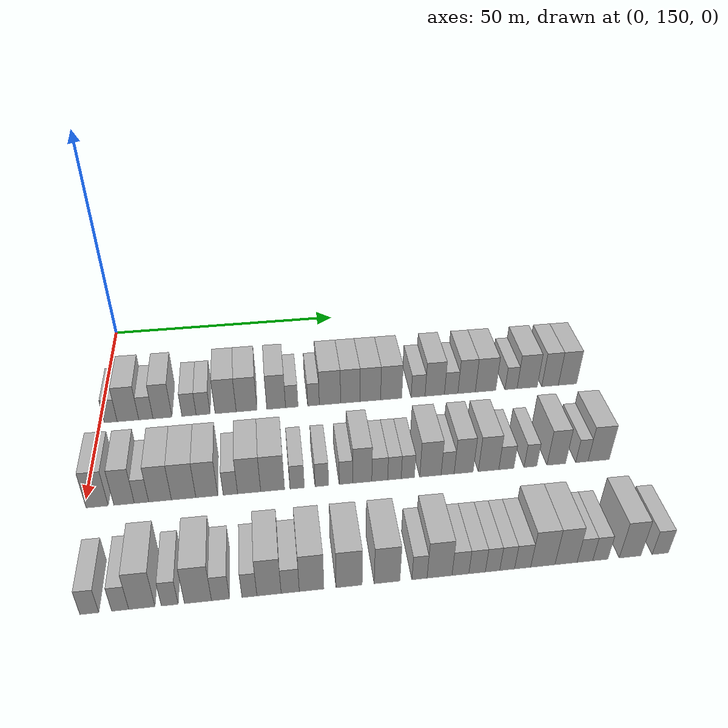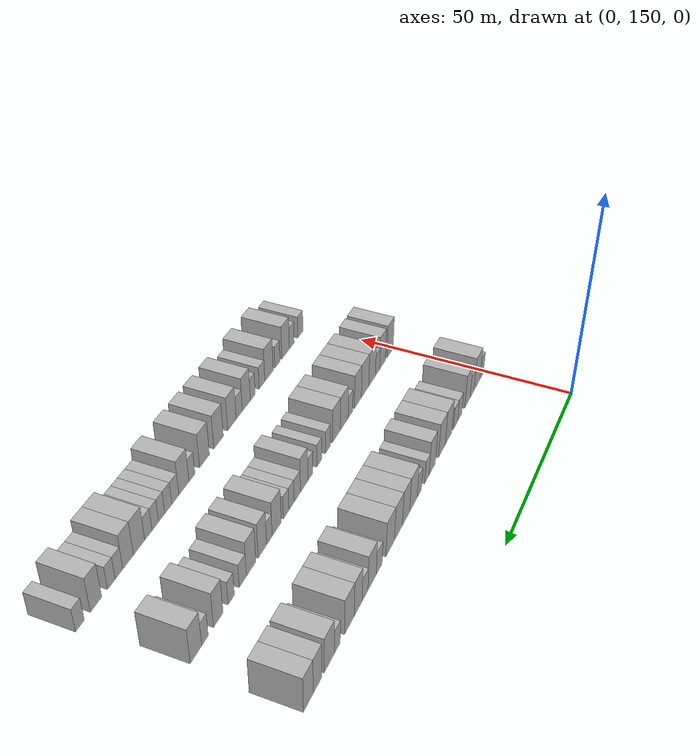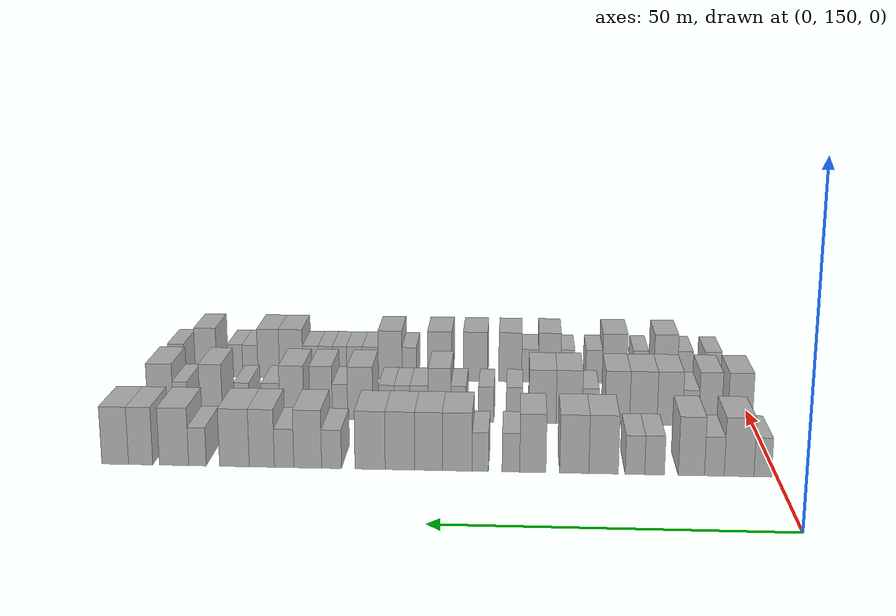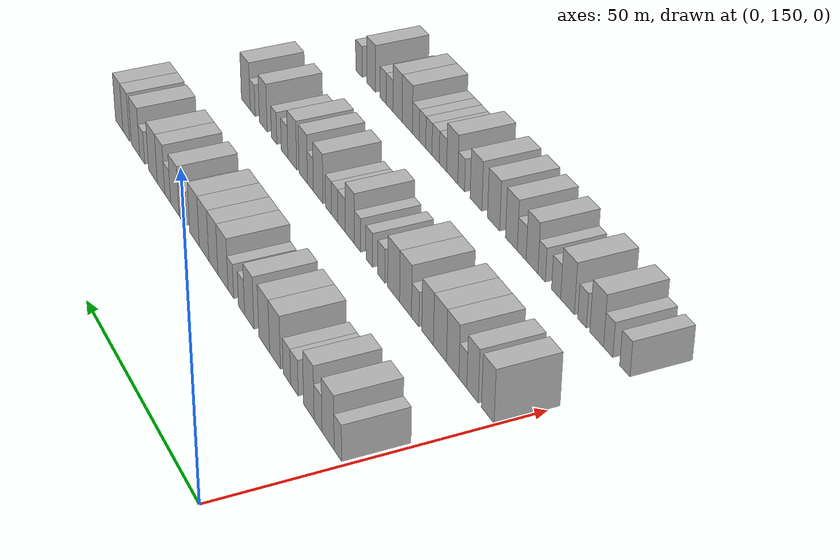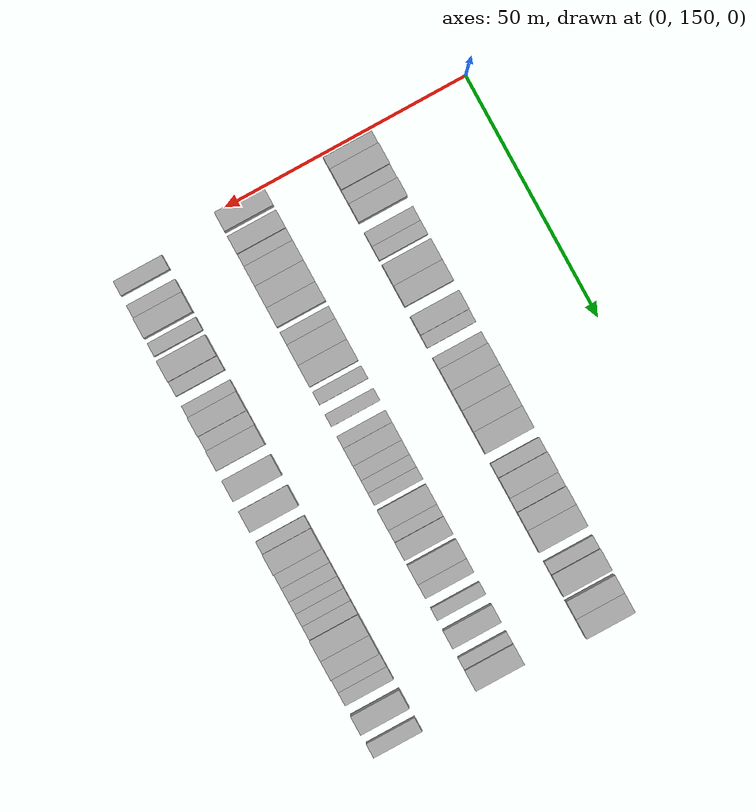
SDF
<sdf version="1.6">
 <world name="default">
  <model name="building_100">
   <static>1</static>
   <pose>25.0000 152.1278 0 0.000000 0.000000 0.000000</pose>
   <link name="link">
    <pose>0 0 3.00 0 0 0</pose>
    <collision name="collision"><geometry><box><size>10.0000 2.5672 6.0000</size></box></geometry></collision>
    <visual name="visual">
     <cast_shadows>0</cast_shadows>
     <geometry><box><size>10.0000 2.5672 6.0000</size></box></geometry>
     <material>
      <script>
       <uri>model://HANNAS_wall/materials/scripts</uri>
       <uri>model://HANNAS_wall/materials/textures</uri>
       <name>vrc/HANNAS_wall</name>
      </script>
     </material>
    </visual>
   </link>
  </model>
  <model name="building_101">
   <static>1</static>
   <pose>25.0000 155.5567 0 0.000000 0.000000 0.000000</pose>
   <link name="link">
    <pose>0 0 4.50 0 0 0</pose>
    <collision name="collision"><geometry><box><size>10.0000 4.2906 9.0000</size></box></geometry></collision>
    <visual name="visual">
     <cast_shadows>0</cast_shadows>
     <geometry><box><size>10.0000 4.2906 9.0000</size></box></geometry>
     <material>
      <script>
       <uri>model://HANNAS_wall/materials/scripts</uri>
       <uri>model://HANNAS_wall/materials/textures</uri>
       <name>vrc/HANNAS_wall</name>
      </script>
     </material>
    </visual>
   </link>
  </model>
  <model name="building_102">
   <static>1</static>
   <pose>25.0000 159.1269 0 0.000000 0.000000 0.000000</pose>
   <link name="link">
    <pose>0 0 3.00 0 0 0</pose>
    <collision name="collision"><geometry><box><size>10.0000 2.8499 6.0000</size></box></geometry></collision>
    <visual name="visual">
     <cast_shadows>0</cast_shadows>
     <geometry><box><size>10.0000 2.8499 6.0000</size></box></geometry>
     <material>
      <script>
       <uri>model://HANNAS_wall/materials/scripts</uri>
       <uri>model://HANNAS_wall/materials/textures</uri>
       <name>vrc/HANNAS_wall</name>
      </script>
     </material>
    </visual>
   </link>
  </model>
  <model name="building_103">
   <static>1</static>
   <pose>25.0000 162.4542 0 0.000000 0.000000 0.000000</pose>
   <link name="link">
    <pose>0 0 4.50 0 0 0</pose>
    <collision name="collision"><geometry><box><size>10.0000 3.8047 9.0000</size></box></geometry></collision>
    <visual name="visual">
     <cast_shadows>0</cast_shadows>
     <geometry><box><size>10.0000 3.8047 9.0000</size></box></geometry>
     <material>
      <script>
       <uri>model://HANNAS_wall/materials/scripts</uri>
       <uri>model://HANNAS_wall/materials/textures</uri>
       <name>vrc/HANNAS_wall</name>
      </script>
     </material>
    </visual>
   </link>
  </model>
  <model name="building_104">
   <static>1</static>
   <pose>25.0000 167.7966 0 0.000000 0.000000 0.000000</pose>
   <link name="link">
    <pose>0 0 3.00 0 0 0</pose>
    <collision name="collision"><geometry><box><size>10.0000 2.8801 6.0000</size></box></geometry></collision>
    <visual name="visual">
     <cast_shadows>0</cast_shadows>
     <geometry><box><size>10.0000 2.8801 6.0000</size></box></geometry>
     <material>
      <script>
       <uri>model://HANNAS_wall/materials/scripts</uri>
       <uri>model://HANNAS_wall/materials/textures</uri>
       <name>vrc/HANNAS_wall</name>
      </script>
     </material>
    </visual>
   </link>
  </model>
  <model name="building_105">
   <static>1</static>
   <pose>25.0000 170.6567 0 0.000000 0.000000 0.000000</pose>
   <link name="link">
    <pose>0 0 3.00 0 0 0</pose>
    <collision name="collision"><geometry><box><size>10.0000 2.8402 6.0000</size></box></geometry></collision>
    <visual name="visual">
     <cast_shadows>0</cast_shadows>
     <geometry><box><size>10.0000 2.8402 6.0000</size></box></geometry>
     <material>
      <script>
       <uri>model://HANNAS_wall/materials/scripts</uri>
       <uri>model://HANNAS_wall/materials/textures</uri>
       <name>vrc/HANNAS_wall</name>
      </script>
     </material>
    </visual>
   </link>
  </model>
  <model name="building_106">
   <static>1</static>
   <pose>25.0000 175.2298 0 0.000000 0.000000 0.000000</pose>
   <link name="link">
    <pose>0 0 4.50 0 0 0</pose>
    <collision name="collision"><geometry><box><size>10.0000 4.3061 9.0000</size></box></geometry></collision>
    <visual name="visual">
     <cast_shadows>0</cast_shadows>
     <geometry><box><size>10.0000 4.3061 9.0000</size></box></geometry>
     <material>
      <script>
       <uri>model://HANNAS_wall/materials/scripts</uri>
       <uri>model://HANNAS_wall/materials/textures</uri>
       <name>vrc/HANNAS_wall</name>
      </script>
     </material>
    </visual>
   </link>
  </model>
  <model name="building_107">
   <static>1</static>
   <pose>25.0000 179.5219 0 0.000000 0.000000 0.000000</pose>
   <link name="link">
    <pose>0 0 4.50 0 0 0</pose>
    <collision name="collision"><geometry><box><size>10.0000 4.2780 9.0000</size></box></geometry></collision>
    <visual name="visual">
     <cast_shadows>0</cast_shadows>
     <geometry><box><size>10.0000 4.2780 9.0000</size></box></geometry>
     <material>
      <script>
       <uri>model://HANNAS_wall/materials/scripts</uri>
       <uri>model://HANNAS_wall/materials/textures</uri>
       <name>vrc/HANNAS_wall</name>
      </script>
     </material>
    </visual>
   </link>
  </model>
  <model name="building_108">
   <static>1</static>
   <pose>25.0000 185.5893 0 0.000000 0.000000 0.000000</pose>
   <link name="link">
    <pose>0 0 4.50 0 0 0</pose>
    <collision name="collision"><geometry><box><size>10.0000 3.8569 9.0000</size></box></geometry></collision>
    <visual name="visual">
     <cast_shadows>0</cast_shadows>
     <geometry><box><size>10.0000 3.8569 9.0000</size></box></geometry>
     <material>
      <script>
       <uri>model://HANNAS_wall/materials/scripts</uri>
       <uri>model://HANNAS_wall/materials/textures</uri>
       <name>vrc/HANNAS_wall</name>
      </script>
     </material>
    </visual>
   </link>
  </model>
  <model name="building_109">
   <static>1</static>
   <pose>25.0000 188.8140 0 0.000000 0.000000 0.000000</pose>
   <link name="link">
    <pose>0 0 3.00 0 0 0</pose>
    <collision name="collision"><geometry><box><size>10.0000 2.5924 6.0000</size></box></geometry></collision>
    <visual name="visual">
     <cast_shadows>0</cast_shadows>
     <geometry><box><size>10.0000 2.5924 6.0000</size></box></geometry>
     <material>
      <script>
       <uri>model://HANNAS_wall/materials/scripts</uri>
       <uri>model://HANNAS_wall/materials/textures</uri>
       <name>vrc/HANNAS_wall</name>
      </script>
     </material>
    </visual>
   </link>
  </model>
  <model name="building_110">
   <static>1</static>
   <pose>25.0000 193.3159 0 0.000000 0.000000 0.000000</pose>
   <link name="link">
    <pose>0 0 3.00 0 0 0</pose>
    <collision name="collision"><geometry><box><size>10.0000 2.4115 6.0000</size></box></geometry></collision>
    <visual name="visual">
     <cast_shadows>0</cast_shadows>
     <geometry><box><size>10.0000 2.4115 6.0000</size></box></geometry>
     <material>
      <script>
       <uri>model://HANNAS_wall/materials/scripts</uri>
       <uri>model://HANNAS_wall/materials/textures</uri>
       <name>vrc/HANNAS_wall</name>
      </script>
     </material>
    </visual>
   </link>
  </model>
  <model name="building_111">
   <static>1</static>
   <pose>25.0000 196.7356 0 0.000000 0.000000 0.000000</pose>
   <link name="link">
    <pose>0 0 4.50 0 0 0</pose>
    <collision name="collision"><geometry><box><size>10.0000 4.4280 9.0000</size></box></geometry></collision>
    <visual name="visual">
     <cast_shadows>0</cast_shadows>
     <geometry><box><size>10.0000 4.4280 9.0000</size></box></geometry>
     <material>
      <script>
       <uri>model://HANNAS_wall/materials/scripts</uri>
       <uri>model://HANNAS_wall/materials/textures</uri>
       <name>vrc/HANNAS_wall</name>
      </script>
     </material>
    </visual>
   </link>
  </model>
  <model name="building_112">
   <static>1</static>
   <pose>25.0000 200.9779 0 0.000000 0.000000 0.000000</pose>
   <link name="link">
    <pose>0 0 4.50 0 0 0</pose>
    <collision name="collision"><geometry><box><size>10.0000 4.0565 9.0000</size></box></geometry></collision>
    <visual name="visual">
     <cast_shadows>0</cast_shadows>
     <geometry><box><size>10.0000 4.0565 9.0000</size></box></geometry>
     <material>
      <script>
       <uri>model://HANNAS_wall/materials/scripts</uri>
       <uri>model://HANNAS_wall/materials/textures</uri>
       <name>vrc/HANNAS_wall</name>
      </script>
     </material>
    </visual>
   </link>
  </model>
  <model name="building_113">
   <static>1</static>
   <pose>25.0000 205.1909 0 0.000000 0.000000 0.000000</pose>
   <link name="link">
    <pose>0 0 4.50 0 0 0</pose>
    <collision name="collision"><geometry><box><size>10.0000 4.3696 9.0000</size></box></geometry></collision>
    <visual name="visual">
     <cast_shadows>0</cast_shadows>
     <geometry><box><size>10.0000 4.3696 9.0000</size></box></geometry>
     <material>
      <script>
       <uri>model://HANNAS_wall/materials/scripts</uri>
       <uri>model://HANNAS_wall/materials/textures</uri>
       <name>vrc/HANNAS_wall</name>
      </script>
     </material>
    </visual>
   </link>
  </model>
  <model name="building_114">
   <static>1</static>
   <pose>25.0000 209.6207 0 0.000000 0.000000 0.000000</pose>
   <link name="link">
    <pose>0 0 4.50 0 0 0</pose>
    <collision name="collision"><geometry><box><size>10.0000 4.4899 9.0000</size></box></geometry></collision>
    <visual name="visual">
     <cast_shadows>0</cast_shadows>
     <geometry><box><size>10.0000 4.4899 9.0000</size></box></geometry>
     <material>
      <script>
       <uri>model://HANNAS_wall/materials/scripts</uri>
       <uri>model://HANNAS_wall/materials/textures</uri>
       <name>vrc/HANNAS_wall</name>
      </script>
     </material>
    </visual>
   </link>
  </model>
  <model name="building_115">
   <static>1</static>
   <pose>25.0000 215.3492 0 0.000000 0.000000 0.000000</pose>
   <link name="link">
    <pose>0 0 3.00 0 0 0</pose>
    <collision name="collision"><geometry><box><size>10.0000 2.9672 6.0000</size></box></geometry></collision>
    <visual name="visual">
     <cast_shadows>0</cast_shadows>
     <geometry><box><size>10.0000 2.9672 6.0000</size></box></geometry>
     <material>
      <script>
       <uri>model://HANNAS_wall/materials/scripts</uri>
       <uri>model://HANNAS_wall/materials/textures</uri>
       <name>vrc/HANNAS_wall</name>
      </script>
     </material>
    </visual>
   </link>
  </model>
  <model name="building_116">
   <static>1</static>
   <pose>25.0000 218.9071 0 0.000000 0.000000 0.000000</pose>
   <link name="link">
    <pose>0 0 4.50 0 0 0</pose>
    <collision name="collision"><geometry><box><size>10.0000 4.1486 9.0000</size></box></geometry></collision>
    <visual name="visual">
     <cast_shadows>0</cast_shadows>
     <geometry><box><size>10.0000 4.1486 9.0000</size></box></geometry>
     <material>
      <script>
       <uri>model://HANNAS_wall/materials/scripts</uri>
       <uri>model://HANNAS_wall/materials/textures</uri>
       <name>vrc/HANNAS_wall</name>
      </script>
     </material>
    </visual>
   </link>
  </model>
  <model name="building_117">
   <static>1</static>
   <pose>25.0000 222.4342 0 0.000000 0.000000 0.000000</pose>
   <link name="link">
    <pose>0 0 3.00 0 0 0</pose>
    <collision name="collision"><geometry><box><size>10.0000 2.9057 6.0000</size></box></geometry></collision>
    <visual name="visual">
     <cast_shadows>0</cast_shadows>
     <geometry><box><size>10.0000 2.9057 6.0000</size></box></geometry>
     <material>
      <script>
       <uri>model://HANNAS_wall/materials/scripts</uri>
       <uri>model://HANNAS_wall/materials/textures</uri>
       <name>vrc/HANNAS_wall</name>
      </script>
     </material>
    </visual>
   </link>
  </model>
  <model name="building_118">
   <static>1</static>
   <pose>25.0000 225.7679 0 0.000000 0.000000 0.000000</pose>
   <link name="link">
    <pose>0 0 4.50 0 0 0</pose>
    <collision name="collision"><geometry><box><size>10.0000 3.7616 9.0000</size></box></geometry></collision>
    <visual name="visual">
     <cast_shadows>0</cast_shadows>
     <geometry><box><size>10.0000 3.7616 9.0000</size></box></geometry>
     <material>
      <script>
       <uri>model://HANNAS_wall/materials/scripts</uri>
       <uri>model://HANNAS_wall/materials/textures</uri>
       <name>vrc/HANNAS_wall</name>
      </script>
     </material>
    </visual>
   </link>
  </model>
  <model name="building_119">
   <static>1</static>
   <pose>25.0000 229.8743 0 0.000000 0.000000 0.000000</pose>
   <link name="link">
    <pose>0 0 4.50 0 0 0</pose>
    <collision name="collision"><geometry><box><size>10.0000 4.4512 9.0000</size></box></geometry></collision>
    <visual name="visual">
     <cast_shadows>0</cast_shadows>
     <geometry><box><size>10.0000 4.4512 9.0000</size></box></geometry>
     <material>
      <script>
       <uri>model://HANNAS_wall/materials/scripts</uri>
       <uri>model://HANNAS_wall/materials/textures</uri>
       <name>vrc/HANNAS_wall</name>
      </script>
     </material>
    </visual>
   </link>
  </model>
  <model name="building_120">
   <static>1</static>
   <pose>25.0000 235.4243 0 0.000000 0.000000 0.000000</pose>
   <link name="link">
    <pose>0 0 3.00 0 0 0</pose>
    <collision name="collision"><geometry><box><size>10.0000 2.6488 6.0000</size></box></geometry></collision>
    <visual name="visual">
     <cast_shadows>0</cast_shadows>
     <geometry><box><size>10.0000 2.6488 6.0000</size></box></geometry>
     <material>
      <script>
       <uri>model://HANNAS_wall/materials/scripts</uri>
       <uri>model://HANNAS_wall/materials/textures</uri>
       <name>vrc/HANNAS_wall</name>
      </script>
     </material>
    </visual>
   </link>
  </model>
  <model name="building_121">
   <static>1</static>
   <pose>25.0000 238.9556 0 0.000000 0.000000 0.000000</pose>
   <link name="link">
    <pose>0 0 4.50 0 0 0</pose>
    <collision name="collision"><geometry><box><size>10.0000 4.4138 9.0000</size></box></geometry></collision>
    <visual name="visual">
     <cast_shadows>0</cast_shadows>
     <geometry><box><size>10.0000 4.4138 9.0000</size></box></geometry>
     <material>
      <script>
       <uri>model://HANNAS_wall/materials/scripts</uri>
       <uri>model://HANNAS_wall/materials/textures</uri>
       <name>vrc/HANNAS_wall</name>
      </script>
     </material>
    </visual>
   </link>
  </model>
  <model name="building_122">
   <static>1</static>
   <pose>25.0000 243.9910 0 0.000000 0.000000 0.000000</pose>
   <link name="link">
    <pose>0 0 4.50 0 0 0</pose>
    <collision name="collision"><geometry><box><size>10.0000 3.6571 9.0000</size></box></geometry></collision>
    <visual name="visual">
     <cast_shadows>0</cast_shadows>
     <geometry><box><size>10.0000 3.6571 9.0000</size></box></geometry>
     <material>
      <script>
       <uri>model://HANNAS_wall/materials/scripts</uri>
       <uri>model://HANNAS_wall/materials/textures</uri>
       <name>vrc/HANNAS_wall</name>
      </script>
     </material>
    </visual>
   </link>
  </model>
  <model name="building_123">
   <static>1</static>
   <pose>25.0000 247.8403 0 0.000000 0.000000 0.000000</pose>
   <link name="link">
    <pose>0 0 4.50 0 0 0</pose>
    <collision name="collision"><geometry><box><size>10.0000 4.0415 9.0000</size></box></geometry></collision>
    <visual name="visual">
     <cast_shadows>0</cast_shadows>
     <geometry><box><size>10.0000 4.0415 9.0000</size></box></geometry>
     <material>
      <script>
       <uri>model://HANNAS_wall/materials/scripts</uri>
       <uri>model://HANNAS_wall/materials/textures</uri>
       <name>vrc/HANNAS_wall</name>
      </script>
     </material>
    </visual>
   </link>
  </model>
  <model name="building_221">
   <static>1</static>
   <pose>47.0000 152.2348 0 0.000000 0.000000 0.000000</pose>
   <link name="link">
    <pose>0 0 4.50 0 0 0</pose>
    <collision name="collision"><geometry><box><size>10.0000 3.9241 9.0000</size></box></geometry></collision>
    <visual name="visual">
     <cast_shadows>0</cast_shadows>
     <geometry><box><size>10.0000 3.9241 9.0000</size></box></geometry>
     <material>
      <script>
       <uri>model://HANNAS_wall/materials/scripts</uri>
       <uri>model://HANNAS_wall/materials/textures</uri>
       <name>vrc/HANNAS_wall</name>
      </script>
     </material>
    </visual>
   </link>
  </model>
  <model name="building_222">
   <static>1</static>
   <pose>47.0000 157.0173 0 0.000000 0.000000 0.000000</pose>
   <link name="link">
    <pose>0 0 4.50 0 0 0</pose>
    <collision name="collision"><geometry><box><size>10.0000 3.6408 9.0000</size></box></geometry></collision>
    <visual name="visual">
     <cast_shadows>0</cast_shadows>
     <geometry><box><size>10.0000 3.6408 9.0000</size></box></geometry>
     <material>
      <script>
       <uri>model://HANNAS_wall/materials/scripts</uri>
       <uri>model://HANNAS_wall/materials/textures</uri>
       <name>vrc/HANNAS_wall</name>
      </script>
     </material>
    </visual>
   </link>
  </model>
  <model name="building_223">
   <static>1</static>
   <pose>47.0000 160.1199 0 0.000000 0.000000 0.000000</pose>
   <link name="link">
    <pose>0 0 3.00 0 0 0</pose>
    <collision name="collision"><geometry><box><size>10.0000 2.5644 6.0000</size></box></geometry></collision>
    <visual name="visual">
     <cast_shadows>0</cast_shadows>
     <geometry><box><size>10.0000 2.5644 6.0000</size></box></geometry>
     <material>
      <script>
       <uri>model://HANNAS_wall/materials/scripts</uri>
       <uri>model://HANNAS_wall/materials/textures</uri>
       <name>vrc/HANNAS_wall</name>
      </script>
     </material>
    </visual>
   </link>
  </model>
  <model name="building_224">
   <static>1</static>
   <pose>47.0000 163.4397 0 0.000000 0.000000 0.000000</pose>
   <link name="link">
    <pose>0 0 4.50 0 0 0</pose>
    <collision name="collision"><geometry><box><size>10.0000 4.0753 9.0000</size></box></geometry></collision>
    <visual name="visual">
     <cast_shadows>0</cast_shadows>
     <geometry><box><size>10.0000 4.0753 9.0000</size></box></geometry>
     <material>
      <script>
       <uri>model://HANNAS_wall/materials/scripts</uri>
       <uri>model://HANNAS_wall/materials/textures</uri>
       <name>vrc/HANNAS_wall</name>
      </script>
     </material>
    </visual>
   </link>
  </model>
  <model name="building_225">
   <static>1</static>
   <pose>47.0000 167.6775 0 0.000000 0.000000 0.000000</pose>
   <link name="link">
    <pose>0 0 4.50 0 0 0</pose>
    <collision name="collision"><geometry><box><size>10.0000 4.4003 9.0000</size></box></geometry></collision>
    <visual name="visual">
     <cast_shadows>0</cast_shadows>
     <geometry><box><size>10.0000 4.4003 9.0000</size></box></geometry>
     <material>
      <script>
       <uri>model://HANNAS_wall/materials/scripts</uri>
       <uri>model://HANNAS_wall/materials/textures</uri>
       <name>vrc/HANNAS_wall</name>
      </script>
     </material>
    </visual>
   </link>
  </model>
  <model name="building_226">
   <static>1</static>
   <pose>47.0000 171.8676 0 0.000000 0.000000 0.000000</pose>
   <link name="link">
    <pose>0 0 4.50 0 0 0</pose>
    <collision name="collision"><geometry><box><size>10.0000 3.9800 9.0000</size></box></geometry></collision>
    <visual name="visual">
     <cast_shadows>0</cast_shadows>
     <geometry><box><size>10.0000 3.9800 9.0000</size></box></geometry>
     <material>
      <script>
       <uri>model://HANNAS_wall/materials/scripts</uri>
       <uri>model://HANNAS_wall/materials/textures</uri>
       <name>vrc/HANNAS_wall</name>
      </script>
     </material>
    </visual>
   </link>
  </model>
  <model name="building_227">
   <static>1</static>
   <pose>47.0000 176.1687 0 0.000000 0.000000 0.000000</pose>
   <link name="link">
    <pose>0 0 3.00 0 0 0</pose>
    <collision name="collision"><geometry><box><size>10.0000 2.6221 6.0000</size></box></geometry></collision>
    <visual name="visual">
     <cast_shadows>0</cast_shadows>
     <geometry><box><size>10.0000 2.6221 6.0000</size></box></geometry>
     <material>
      <script>
       <uri>model://HANNAS_wall/materials/scripts</uri>
       <uri>model://HANNAS_wall/materials/textures</uri>
       <name>vrc/HANNAS_wall</name>
      </script>
     </material>
    </visual>
   </link>
  </model>
  <model name="building_228">
   <static>1</static>
   <pose>47.0000 179.5935 0 0.000000 0.000000 0.000000</pose>
   <link name="link">
    <pose>0 0 4.50 0 0 0</pose>
    <collision name="collision"><geometry><box><size>10.0000 4.2276 9.0000</size></box></geometry></collision>
    <visual name="visual">
     <cast_shadows>0</cast_shadows>
     <geometry><box><size>10.0000 4.2276 9.0000</size></box></geometry>
     <material>
      <script>
       <uri>model://HANNAS_wall/materials/scripts</uri>
       <uri>model://HANNAS_wall/materials/textures</uri>
       <name>vrc/HANNAS_wall</name>
      </script>
     </material>
    </visual>
   </link>
  </model>
  <model name="building_229">
   <static>1</static>
   <pose>47.0000 183.9075 0 0.000000 0.000000 0.000000</pose>
   <link name="link">
    <pose>0 0 4.50 0 0 0</pose>
    <collision name="collision"><geometry><box><size>10.0000 4.4002 9.0000</size></box></geometry></collision>
    <visual name="visual">
     <cast_shadows>0</cast_shadows>
     <geometry><box><size>10.0000 4.4002 9.0000</size></box></geometry>
     <material>
      <script>
       <uri>model://HANNAS_wall/materials/scripts</uri>
       <uri>model://HANNAS_wall/materials/textures</uri>
       <name>vrc/HANNAS_wall</name>
      </script>
     </material>
    </visual>
   </link>
  </model>
  <model name="building_230">
   <static>1</static>
   <pose>47.0000 188.4356 0 0.000000 0.000000 0.000000</pose>
   <link name="link">
    <pose>0 0 3.00 0 0 0</pose>
    <collision name="collision"><geometry><box><size>10.0000 2.6561 6.0000</size></box></geometry></collision>
    <visual name="visual">
     <cast_shadows>0</cast_shadows>
     <geometry><box><size>10.0000 2.6561 6.0000</size></box></geometry>
     <material>
      <script>
       <uri>model://HANNAS_wall/materials/scripts</uri>
       <uri>model://HANNAS_wall/materials/textures</uri>
       <name>vrc/HANNAS_wall</name>
      </script>
     </material>
    </visual>
   </link>
  </model>
  <model name="building_231">
   <static>1</static>
   <pose>47.0000 193.0149 0 0.000000 0.000000 0.000000</pose>
   <link name="link">
    <pose>0 0 3.00 0 0 0</pose>
    <collision name="collision"><geometry><box><size>10.0000 2.5025 6.0000</size></box></geometry></collision>
    <visual name="visual">
     <cast_shadows>0</cast_shadows>
     <geometry><box><size>10.0000 2.5025 6.0000</size></box></geometry>
     <material>
      <script>
       <uri>model://HANNAS_wall/materials/scripts</uri>
       <uri>model://HANNAS_wall/materials/textures</uri>
       <name>vrc/HANNAS_wall</name>
      </script>
     </material>
    </visual>
   </link>
  </model>
  <model name="building_232">
   <static>1</static>
   <pose>47.0000 197.5117 0 0.000000 0.000000 0.000000</pose>
   <link name="link">
    <pose>0 0 3.00 0 0 0</pose>
    <collision name="collision"><geometry><box><size>10.0000 2.4912 6.0000</size></box></geometry></collision>
    <visual name="visual">
     <cast_shadows>0</cast_shadows>
     <geometry><box><size>10.0000 2.4912 6.0000</size></box></geometry>
     <material>
      <script>
       <uri>model://HANNAS_wall/materials/scripts</uri>
       <uri>model://HANNAS_wall/materials/textures</uri>
       <name>vrc/HANNAS_wall</name>
      </script>
     </material>
    </visual>
   </link>
  </model>
  <model name="building_233">
   <static>1</static>
   <pose>47.0000 200.5667 0 0.000000 0.000000 0.000000</pose>
   <link name="link">
    <pose>0 0 4.50 0 0 0</pose>
    <collision name="collision"><geometry><box><size>10.0000 3.6189 9.0000</size></box></geometry></collision>
    <visual name="visual">
     <cast_shadows>0</cast_shadows>
     <geometry><box><size>10.0000 3.6189 9.0000</size></box></geometry>
     <material>
      <script>
       <uri>model://HANNAS_wall/materials/scripts</uri>
       <uri>model://HANNAS_wall/materials/textures</uri>
       <name>vrc/HANNAS_wall</name>
      </script>
     </material>
    </visual>
   </link>
  </model>
  <model name="building_234">
   <static>1</static>
   <pose>47.0000 203.8761 0 0.000000 0.000000 0.000000</pose>
   <link name="link">
    <pose>0 0 3.00 0 0 0</pose>
    <collision name="collision"><geometry><box><size>10.0000 2.9999 6.0000</size></box></geometry></collision>
    <visual name="visual">
     <cast_shadows>0</cast_shadows>
     <geometry><box><size>10.0000 2.9999 6.0000</size></box></geometry>
     <material>
      <script>
       <uri>model://HANNAS_wall/materials/scripts</uri>
       <uri>model://HANNAS_wall/materials/textures</uri>
       <name>vrc/HANNAS_wall</name>
      </script>
     </material>
    </visual>
   </link>
  </model>
  <model name="building_235">
   <static>1</static>
   <pose>47.0000 206.6641 0 0.000000 0.000000 0.000000</pose>
   <link name="link">
    <pose>0 0 3.00 0 0 0</pose>
    <collision name="collision"><geometry><box><size>10.0000 2.5761 6.0000</size></box></geometry></collision>
    <visual name="visual">
     <cast_shadows>0</cast_shadows>
     <geometry><box><size>10.0000 2.5761 6.0000</size></box></geometry>
     <material>
      <script>
       <uri>model://HANNAS_wall/materials/scripts</uri>
       <uri>model://HANNAS_wall/materials/textures</uri>
       <name>vrc/HANNAS_wall</name>
      </script>
     </material>
    </visual>
   </link>
  </model>
  <model name="building_236">
   <static>1</static>
   <pose>47.0000 209.2122 0 0.000000 0.000000 0.000000</pose>
   <link name="link">
    <pose>0 0 3.00 0 0 0</pose>
    <collision name="collision"><geometry><box><size>10.0000 2.5201 6.0000</size></box></geometry></collision>
    <visual name="visual">
     <cast_shadows>0</cast_shadows>
     <geometry><box><size>10.0000 2.5201 6.0000</size></box></geometry>
     <material>
      <script>
       <uri>model://HANNAS_wall/materials/scripts</uri>
       <uri>model://HANNAS_wall/materials/textures</uri>
       <name>vrc/HANNAS_wall</name>
      </script>
     </material>
    </visual>
   </link>
  </model>
  <model name="building_237">
   <static>1</static>
   <pose>47.0000 213.5218 0 0.000000 0.000000 0.000000</pose>
   <link name="link">
    <pose>0 0 4.50 0 0 0</pose>
    <collision name="collision"><geometry><box><size>10.0000 4.0990 9.0000</size></box></geometry></collision>
    <visual name="visual">
     <cast_shadows>0</cast_shadows>
     <geometry><box><size>10.0000 4.0990 9.0000</size></box></geometry>
     <material>
      <script>
       <uri>model://HANNAS_wall/materials/scripts</uri>
       <uri>model://HANNAS_wall/materials/textures</uri>
       <name>vrc/HANNAS_wall</name>
      </script>
     </material>
    </visual>
   </link>
  </model>
  <model name="building_238">
   <static>1</static>
   <pose>47.0000 216.8248 0 0.000000 0.000000 0.000000</pose>
   <link name="link">
    <pose>0 0 3.00 0 0 0</pose>
    <collision name="collision"><geometry><box><size>10.0000 2.5070 6.0000</size></box></geometry></collision>
    <visual name="visual">
     <cast_shadows>0</cast_shadows>
     <geometry><box><size>10.0000 2.5070 6.0000</size></box></geometry>
     <material>
      <script>
       <uri>model://HANNAS_wall/materials/scripts</uri>
       <uri>model://HANNAS_wall/materials/textures</uri>
       <name>vrc/HANNAS_wall</name>
      </script>
     </material>
    </visual>
   </link>
  </model>
  <model name="building_239">
   <static>1</static>
   <pose>47.0000 219.9082 0 0.000000 0.000000 0.000000</pose>
   <link name="link">
    <pose>0 0 4.50 0 0 0</pose>
    <collision name="collision"><geometry><box><size>10.0000 3.6599 9.0000</size></box></geometry></collision>
    <visual name="visual">
     <cast_shadows>0</cast_shadows>
     <geometry><box><size>10.0000 3.6599 9.0000</size></box></geometry>
     <material>
      <script>
       <uri>model://HANNAS_wall/materials/scripts</uri>
       <uri>model://HANNAS_wall/materials/textures</uri>
       <name>vrc/HANNAS_wall</name>
      </script>
     </material>
    </visual>
   </link>
  </model>
  <model name="building_240">
   <static>1</static>
   <pose>47.0000 224.7253 0 0.000000 0.000000 0.000000</pose>
   <link name="link">
    <pose>0 0 4.50 0 0 0</pose>
    <collision name="collision"><geometry><box><size>10.0000 3.9743 9.0000</size></box></geometry></collision>
    <visual name="visual">
     <cast_shadows>0</cast_shadows>
     <geometry><box><size>10.0000 3.9743 9.0000</size></box></geometry>
     <material>
      <script>
       <uri>model://HANNAS_wall/materials/scripts</uri>
       <uri>model://HANNAS_wall/materials/textures</uri>
       <name>vrc/HANNAS_wall</name>
      </script>
     </material>
    </visual>
   </link>
  </model>
  <model name="building_241">
   <static>1</static>
   <pose>47.0000 228.1827 0 0.000000 0.000000 0.000000</pose>
   <link name="link">
    <pose>0 0 3.00 0 0 0</pose>
    <collision name="collision"><geometry><box><size>10.0000 2.9405 6.0000</size></box></geometry></collision>
    <visual name="visual">
     <cast_shadows>0</cast_shadows>
     <geometry><box><size>10.0000 2.9405 6.0000</size></box></geometry>
     <material>
      <script>
       <uri>model://HANNAS_wall/materials/scripts</uri>
       <uri>model://HANNAS_wall/materials/textures</uri>
       <name>vrc/HANNAS_wall</name>
      </script>
     </material>
    </visual>
   </link>
  </model>
  <model name="building_242">
   <static>1</static>
   <pose>47.0000 232.9077 0 0.000000 0.000000 0.000000</pose>
   <link name="link">
    <pose>0 0 3.00 0 0 0</pose>
    <collision name="collision"><geometry><box><size>10.0000 2.5096 6.0000</size></box></geometry></collision>
    <visual name="visual">
     <cast_shadows>0</cast_shadows>
     <geometry><box><size>10.0000 2.5096 6.0000</size></box></geometry>
     <material>
      <script>
       <uri>model://HANNAS_wall/materials/scripts</uri>
       <uri>model://HANNAS_wall/materials/textures</uri>
       <name>vrc/HANNAS_wall</name>
      </script>
     </material>
    </visual>
   </link>
  </model>
  <model name="building_243">
   <static>1</static>
   <pose>47.0000 238.0035 0 0.000000 0.000000 0.000000</pose>
   <link name="link">
    <pose>0 0 4.50 0 0 0</pose>
    <collision name="collision"><geometry><box><size>10.0000 3.6819 9.0000</size></box></geometry></collision>
    <visual name="visual">
     <cast_shadows>0</cast_shadows>
     <geometry><box><size>10.0000 3.6819 9.0000</size></box></geometry>
     <material>
      <script>
       <uri>model://HANNAS_wall/materials/scripts</uri>
       <uri>model://HANNAS_wall/materials/textures</uri>
       <name>vrc/HANNAS_wall</name>
      </script>
     </material>
    </visual>
   </link>
  </model>
  <model name="building_244">
   <static>1</static>
   <pose>47.0000 243.0655 0 0.000000 0.000000 0.000000</pose>
   <link name="link">
    <pose>0 0 3.00 0 0 0</pose>
    <collision name="collision"><geometry><box><size>10.0000 2.4421 6.0000</size></box></geometry></collision>
    <visual name="visual">
     <cast_shadows>0</cast_shadows>
     <geometry><box><size>10.0000 2.4421 6.0000</size></box></geometry>
     <material>
      <script>
       <uri>model://HANNAS_wall/materials/scripts</uri>
       <uri>model://HANNAS_wall/materials/textures</uri>
       <name>vrc/HANNAS_wall</name>
      </script>
     </material>
    </visual>
   </link>
  </model>
  <model name="building_245">
   <static>1</static>
   <pose>47.0000 246.4024 0 0.000000 0.000000 0.000000</pose>
   <link name="link">
    <pose>0 0 4.50 0 0 0</pose>
    <collision name="collision"><geometry><box><size>10.0000 4.2317 9.0000</size></box></geometry></collision>
    <visual name="visual">
     <cast_shadows>0</cast_shadows>
     <geometry><box><size>10.0000 4.2317 9.0000</size></box></geometry>
     <material>
      <script>
       <uri>model://HANNAS_wall/materials/scripts</uri>
       <uri>model://HANNAS_wall/materials/textures</uri>
       <name>vrc/HANNAS_wall</name>
      </script>
     </material>
    </visual>
   </link>
  </model>
  <model name="building_346">
   <static>1</static>
   <pose>69.0000 153.8177 0 0.000000 0.000000 0.000000</pose>
   <link name="link">
    <pose>0 0 3.00 0 0 0</pose>
    <collision name="collision"><geometry><box><size>10.0000 2.9483 6.0000</size></box></geometry></collision>
    <visual name="visual">
     <cast_shadows>0</cast_shadows>
     <geometry><box><size>10.0000 2.9483 6.0000</size></box></geometry>
     <material>
      <script>
       <uri>model://HANNAS_wall/materials/scripts</uri>
       <uri>model://HANNAS_wall/materials/textures</uri>
       <name>vrc/HANNAS_wall</name>
      </script>
     </material>
    </visual>
   </link>
  </model>
  <model name="building_347">
   <static>1</static>
   <pose>69.0000 158.6338 0 0.000000 0.000000 0.000000</pose>
   <link name="link">
    <pose>0 0 3.00 0 0 0</pose>
    <collision name="collision"><geometry><box><size>10.0000 2.6839 6.0000</size></box></geometry></collision>
    <visual name="visual">
     <cast_shadows>0</cast_shadows>
     <geometry><box><size>10.0000 2.6839 6.0000</size></box></geometry>
     <material>
      <script>
       <uri>model://HANNAS_wall/materials/scripts</uri>
       <uri>model://HANNAS_wall/materials/textures</uri>
       <name>vrc/HANNAS_wall</name>
      </script>
     </material>
    </visual>
   </link>
  </model>
  <model name="building_348">
   <static>1</static>
   <pose>69.0000 162.0412 0 0.000000 0.000000 0.000000</pose>
   <link name="link">
    <pose>0 0 4.50 0 0 0</pose>
    <collision name="collision"><geometry><box><size>10.0000 4.1308 9.0000</size></box></geometry></collision>
    <visual name="visual">
     <cast_shadows>0</cast_shadows>
     <geometry><box><size>10.0000 4.1308 9.0000</size></box></geometry>
     <material>
      <script>
       <uri>model://HANNAS_wall/materials/scripts</uri>
       <uri>model://HANNAS_wall/materials/textures</uri>
       <name>vrc/HANNAS_wall</name>
      </script>
     </material>
    </visual>
   </link>
  </model>
  <model name="building_349">
   <static>1</static>
   <pose>69.0000 166.4424 0 0.000000 0.000000 0.000000</pose>
   <link name="link">
    <pose>0 0 3.00 0 0 0</pose>
    <collision name="collision"><geometry><box><size>10.0000 2.6717 6.0000</size></box></geometry></collision>
    <visual name="visual">
     <cast_shadows>0</cast_shadows>
     <geometry><box><size>10.0000 2.6717 6.0000</size></box></geometry>
     <material>
      <script>
       <uri>model://HANNAS_wall/materials/scripts</uri>
       <uri>model://HANNAS_wall/materials/textures</uri>
       <name>vrc/HANNAS_wall</name>
      </script>
     </material>
    </visual>
   </link>
  </model>
  <model name="building_350">
   <static>1</static>
   <pose>69.0000 170.9402 0 0.000000 0.000000 0.000000</pose>
   <link name="link">
    <pose>0 0 4.50 0 0 0</pose>
    <collision name="collision"><geometry><box><size>10.0000 4.3239 9.0000</size></box></geometry></collision>
    <visual name="visual">
     <cast_shadows>0</cast_shadows>
     <geometry><box><size>10.0000 4.3239 9.0000</size></box></geometry>
     <material>
      <script>
       <uri>model://HANNAS_wall/materials/scripts</uri>
       <uri>model://HANNAS_wall/materials/textures</uri>
       <name>vrc/HANNAS_wall</name>
      </script>
     </material>
    </visual>
   </link>
  </model>
  <model name="building_351">
   <static>1</static>
   <pose>69.0000 174.5482 0 0.000000 0.000000 0.000000</pose>
   <link name="link">
    <pose>0 0 3.00 0 0 0</pose>
    <collision name="collision"><geometry><box><size>10.0000 2.8920 6.0000</size></box></geometry></collision>
    <visual name="visual">
     <cast_shadows>0</cast_shadows>
     <geometry><box><size>10.0000 2.8920 6.0000</size></box></geometry>
     <material>
      <script>
       <uri>model://HANNAS_wall/materials/scripts</uri>
       <uri>model://HANNAS_wall/materials/textures</uri>
       <name>vrc/HANNAS_wall</name>
      </script>
     </material>
    </visual>
   </link>
  </model>
  <model name="building_352">
   <static>1</static>
   <pose>69.0000 179.2008 0 0.000000 0.000000 0.000000</pose>
   <link name="link">
    <pose>0 0 3.00 0 0 0</pose>
    <collision name="collision"><geometry><box><size>10.0000 2.4133 6.0000</size></box></geometry></collision>
    <visual name="visual">
     <cast_shadows>0</cast_shadows>
     <geometry><box><size>10.0000 2.4133 6.0000</size></box></geometry>
     <material>
      <script>
       <uri>model://HANNAS_wall/materials/scripts</uri>
       <uri>model://HANNAS_wall/materials/textures</uri>
       <name>vrc/HANNAS_wall</name>
      </script>
     </material>
    </visual>
   </link>
  </model>
  <model name="building_353">
   <static>1</static>
   <pose>69.0000 182.3709 0 0.000000 0.000000 0.000000</pose>
   <link name="link">
    <pose>0 0 4.50 0 0 0</pose>
    <collision name="collision"><geometry><box><size>10.0000 3.9270 9.0000</size></box></geometry></collision>
    <visual name="visual">
     <cast_shadows>0</cast_shadows>
     <geometry><box><size>10.0000 3.9270 9.0000</size></box></geometry>
     <material>
      <script>
       <uri>model://HANNAS_wall/materials/scripts</uri>
       <uri>model://HANNAS_wall/materials/textures</uri>
       <name>vrc/HANNAS_wall</name>
      </script>
     </material>
    </visual>
   </link>
  </model>
  <model name="building_354">
   <static>1</static>
   <pose>69.0000 185.8108 0 0.000000 0.000000 0.000000</pose>
   <link name="link">
    <pose>0 0 3.00 0 0 0</pose>
    <collision name="collision"><geometry><box><size>10.0000 2.9527 6.0000</size></box></geometry></collision>
    <visual name="visual">
     <cast_shadows>0</cast_shadows>
     <geometry><box><size>10.0000 2.9527 6.0000</size></box></geometry>
     <material>
      <script>
       <uri>model://HANNAS_wall/materials/scripts</uri>
       <uri>model://HANNAS_wall/materials/textures</uri>
       <name>vrc/HANNAS_wall</name>
      </script>
     </material>
    </visual>
   </link>
  </model>
  <model name="building_355">
   <static>1</static>
   <pose>69.0000 189.3086 0 0.000000 0.000000 0.000000</pose>
   <link name="link">
    <pose>0 0 4.50 0 0 0</pose>
    <collision name="collision"><geometry><box><size>10.0000 4.0430 9.0000</size></box></geometry></collision>
    <visual name="visual">
     <cast_shadows>0</cast_shadows>
     <geometry><box><size>10.0000 4.0430 9.0000</size></box></geometry>
     <material>
      <script>
       <uri>model://HANNAS_wall/materials/scripts</uri>
       <uri>model://HANNAS_wall/materials/textures</uri>
       <name>vrc/HANNAS_wall</name>
      </script>
     </material>
    </visual>
   </link>
  </model>
  <model name="building_356">
   <static>1</static>
   <pose>69.0000 195.4827 0 0.000000 0.000000 0.000000</pose>
   <link name="link">
    <pose>0 0 4.50 0 0 0</pose>
    <collision name="collision"><geometry><box><size>10.0000 4.3051 9.0000</size></box></geometry></collision>
    <visual name="visual">
     <cast_shadows>0</cast_shadows>
     <geometry><box><size>10.0000 4.3051 9.0000</size></box></geometry>
     <material>
      <script>
       <uri>model://HANNAS_wall/materials/scripts</uri>
       <uri>model://HANNAS_wall/materials/textures</uri>
       <name>vrc/HANNAS_wall</name>
      </script>
     </material>
    </visual>
   </link>
  </model>
  <model name="building_357">
   <static>1</static>
   <pose>69.0000 201.7885 0 0.000000 0.000000 0.000000</pose>
   <link name="link">
    <pose>0 0 4.50 0 0 0</pose>
    <collision name="collision"><geometry><box><size>10.0000 4.3065 9.0000</size></box></geometry></collision>
    <visual name="visual">
     <cast_shadows>0</cast_shadows>
     <geometry><box><size>10.0000 4.3065 9.0000</size></box></geometry>
     <material>
      <script>
       <uri>model://HANNAS_wall/materials/scripts</uri>
       <uri>model://HANNAS_wall/materials/textures</uri>
       <name>vrc/HANNAS_wall</name>
      </script>
     </material>
    </visual>
   </link>
  </model>
  <model name="building_358">
   <static>1</static>
   <pose>69.0000 207.2155 0 0.000000 0.000000 0.000000</pose>
   <link name="link">
    <pose>0 0 3.00 0 0 0</pose>
    <collision name="collision"><geometry><box><size>10.0000 2.5475 6.0000</size></box></geometry></collision>
    <visual name="visual">
     <cast_shadows>0</cast_shadows>
     <geometry><box><size>10.0000 2.5475 6.0000</size></box></geometry>
     <material>
      <script>
       <uri>model://HANNAS_wall/materials/scripts</uri>
       <uri>model://HANNAS_wall/materials/textures</uri>
       <name>vrc/HANNAS_wall</name>
      </script>
     </material>
    </visual>
   </link>
  </model>
  <model name="building_359">
   <static>1</static>
   <pose>69.0000 210.5958 0 0.000000 0.000000 0.000000</pose>
   <link name="link">
    <pose>0 0 4.50 0 0 0</pose>
    <collision name="collision"><geometry><box><size>10.0000 4.2131 9.0000</size></box></geometry></collision>
    <visual name="visual">
     <cast_shadows>0</cast_shadows>
     <geometry><box><size>10.0000 4.2131 9.0000</size></box></geometry>
     <material>
      <script>
       <uri>model://HANNAS_wall/materials/scripts</uri>
       <uri>model://HANNAS_wall/materials/textures</uri>
       <name>vrc/HANNAS_wall</name>
      </script>
     </material>
    </visual>
   </link>
  </model>
  <model name="building_360">
   <static>1</static>
   <pose>69.0000 214.1358 0 0.000000 0.000000 0.000000</pose>
   <link name="link">
    <pose>0 0 3.00 0 0 0</pose>
    <collision name="collision"><geometry><box><size>10.0000 2.8669 6.0000</size></box></geometry></collision>
    <visual name="visual">
     <cast_shadows>0</cast_shadows>
     <geometry><box><size>10.0000 2.8669 6.0000</size></box></geometry>
     <material>
      <script>
       <uri>model://HANNAS_wall/materials/scripts</uri>
       <uri>model://HANNAS_wall/materials/textures</uri>
       <name>vrc/HANNAS_wall</name>
      </script>
     </material>
    </visual>
   </link>
  </model>
  <model name="building_361">
   <static>1</static>
   <pose>69.0000 216.9760 0 0.000000 0.000000 0.000000</pose>
   <link name="link">
    <pose>0 0 3.00 0 0 0</pose>
    <collision name="collision"><geometry><box><size>10.0000 2.8134 6.0000</size></box></geometry></collision>
    <visual name="visual">
     <cast_shadows>0</cast_shadows>
     <geometry><box><size>10.0000 2.8134 6.0000</size></box></geometry>
     <material>
      <script>
       <uri>model://HANNAS_wall/materials/scripts</uri>
       <uri>model://HANNAS_wall/materials/textures</uri>
       <name>vrc/HANNAS_wall</name>
      </script>
     </material>
    </visual>
   </link>
  </model>
  <model name="building_362">
   <static>1</static>
   <pose>69.0000 219.6180 0 0.000000 0.000000 0.000000</pose>
   <link name="link">
    <pose>0 0 3.00 0 0 0</pose>
    <collision name="collision"><geometry><box><size>10.0000 2.4708 6.0000</size></box></geometry></collision>
    <visual name="visual">
     <cast_shadows>0</cast_shadows>
     <geometry><box><size>10.0000 2.4708 6.0000</size></box></geometry>
     <material>
      <script>
       <uri>model://HANNAS_wall/materials/scripts</uri>
       <uri>model://HANNAS_wall/materials/textures</uri>
       <name>vrc/HANNAS_wall</name>
      </script>
     </material>
    </visual>
   </link>
  </model>
  <model name="building_363">
   <static>1</static>
   <pose>69.0000 222.1265 0 0.000000 0.000000 0.000000</pose>
   <link name="link">
    <pose>0 0 3.00 0 0 0</pose>
    <collision name="collision"><geometry><box><size>10.0000 2.5461 6.0000</size></box></geometry></collision>
    <visual name="visual">
     <cast_shadows>0</cast_shadows>
     <geometry><box><size>10.0000 2.5461 6.0000</size></box></geometry>
     <material>
      <script>
       <uri>model://HANNAS_wall/materials/scripts</uri>
       <uri>model://HANNAS_wall/materials/textures</uri>
       <name>vrc/HANNAS_wall</name>
      </script>
     </material>
    </visual>
   </link>
  </model>
  <model name="building_364">
   <static>1</static>
   <pose>69.0000 224.7946 0 0.000000 0.000000 0.000000</pose>
   <link name="link">
    <pose>0 0 3.00 0 0 0</pose>
    <collision name="collision"><geometry><box><size>10.0000 2.7901 6.0000</size></box></geometry></collision>
    <visual name="visual">
     <cast_shadows>0</cast_shadows>
     <geometry><box><size>10.0000 2.7901 6.0000</size></box></geometry>
     <material>
      <script>
       <uri>model://HANNAS_wall/materials/scripts</uri>
       <uri>model://HANNAS_wall/materials/textures</uri>
       <name>vrc/HANNAS_wall</name>
      </script>
     </material>
    </visual>
   </link>
  </model>
  <model name="building_365">
   <static>1</static>
   <pose>69.0000 228.2964 0 0.000000 0.000000 0.000000</pose>
   <link name="link">
    <pose>0 0 4.50 0 0 0</pose>
    <collision name="collision"><geometry><box><size>10.0000 4.2136 9.0000</size></box></geometry></collision>
    <visual name="visual">
     <cast_shadows>0</cast_shadows>
     <geometry><box><size>10.0000 4.2136 9.0000</size></box></geometry>
     <material>
      <script>
       <uri>model://HANNAS_wall/materials/scripts</uri>
       <uri>model://HANNAS_wall/materials/textures</uri>
       <name>vrc/HANNAS_wall</name>
      </script>
     </material>
    </visual>
   </link>
  </model>
  <model name="building_366">
   <static>1</static>
   <pose>69.0000 232.3361 0 0.000000 0.000000 0.000000</pose>
   <link name="link">
    <pose>0 0 4.50 0 0 0</pose>
    <collision name="collision"><geometry><box><size>10.0000 3.8659 9.0000</size></box></geometry></collision>
    <visual name="visual">
     <cast_shadows>0</cast_shadows>
     <geometry><box><size>10.0000 3.8659 9.0000</size></box></geometry>
     <material>
      <script>
       <uri>model://HANNAS_wall/materials/scripts</uri>
       <uri>model://HANNAS_wall/materials/textures</uri>
       <name>vrc/HANNAS_wall</name>
      </script>
     </material>
    </visual>
   </link>
  </model>
  <model name="building_367">
   <static>1</static>
   <pose>69.0000 235.6362 0 0.000000 0.000000 0.000000</pose>
   <link name="link">
    <pose>0 0 3.00 0 0 0</pose>
    <collision name="collision"><geometry><box><size>10.0000 2.7343 6.0000</size></box></geometry></collision>
    <visual name="visual">
     <cast_shadows>0</cast_shadows>
     <geometry><box><size>10.0000 2.7343 6.0000</size></box></geometry>
     <material>
      <script>
       <uri>model://HANNAS_wall/materials/scripts</uri>
       <uri>model://HANNAS_wall/materials/textures</uri>
       <name>vrc/HANNAS_wall</name>
      </script>
     </material>
    </visual>
   </link>
  </model>
  <model name="building_368">
   <static>1</static>
   <pose>69.0000 238.3418 0 0.000000 0.000000 0.000000</pose>
   <link name="link">
    <pose>0 0 3.00 0 0 0</pose>
    <collision name="collision"><geometry><box><size>10.0000 2.6769 6.0000</size></box></geometry></collision>
    <visual name="visual">
     <cast_shadows>0</cast_shadows>
     <geometry><box><size>10.0000 2.6769 6.0000</size></box></geometry>
     <material>
      <script>
       <uri>model://HANNAS_wall/materials/scripts</uri>
       <uri>model://HANNAS_wall/materials/textures</uri>
       <name>vrc/HANNAS_wall</name>
      </script>
     </material>
    </visual>
   </link>
  </model>
  <model name="building_369">
   <static>1</static>
   <pose>69.0000 243.6051 0 0.000000 0.000000 0.000000</pose>
   <link name="link">
    <pose>0 0 4.50 0 0 0</pose>
    <collision name="collision"><geometry><box><size>10.0000 3.8496 9.0000</size></box></geometry></collision>
    <visual name="visual">
     <cast_shadows>0</cast_shadows>
     <geometry><box><size>10.0000 3.8496 9.0000</size></box></geometry>
     <material>
      <script>
       <uri>model://HANNAS_wall/materials/scripts</uri>
       <uri>model://HANNAS_wall/materials/textures</uri>
       <name>vrc/HANNAS_wall</name>
      </script>
     </material>
    </visual>
   </link>
  </model>
  <model name="building_370">
   <static>1</static>
   <pose>69.0000 248.9745 0 0.000000 0.000000 0.000000</pose>
   <link name="link">
    <pose>0 0 3.00 0 0 0</pose>
    <collision name="collision"><geometry><box><size>10.0000 2.8894 6.0000</size></box></geometry></collision>
    <visual name="visual">
     <cast_shadows>0</cast_shadows>
     <geometry><box><size>10.0000 2.8894 6.0000</size></box></geometry>
     <material>
      <script>
       <uri>model://HANNAS_wall/materials/scripts</uri>
       <uri>model://HANNAS_wall/materials/textures</uri>
       <name>vrc/HANNAS_wall</name>
      </script>
     </material>
    </visual>
   </link>
  </model>
 </world>
</sdf>
